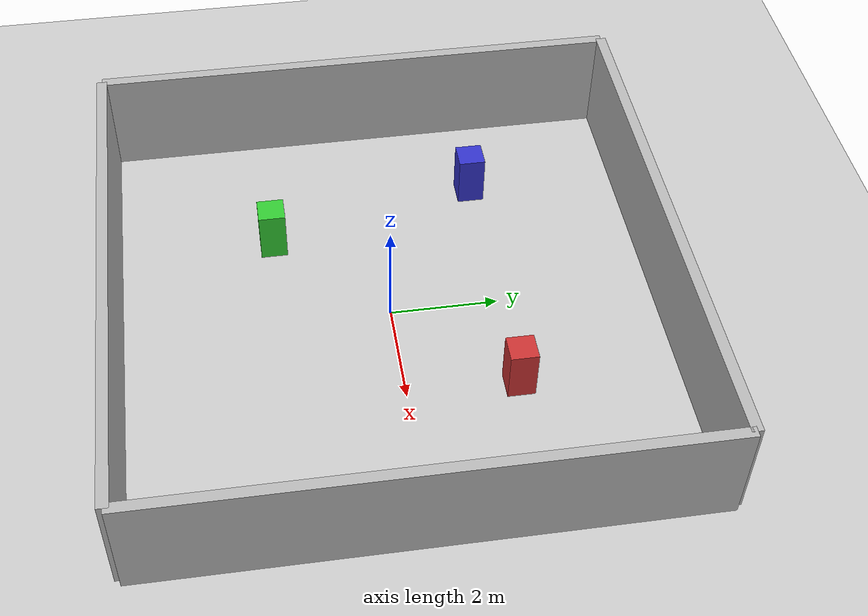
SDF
<?xml version="1.0" ?>
<sdf version="1.6">
  <world name="test_room">

    <gravity>0 0 0</gravity>

    <include><uri>model://ground_plane</uri></include>
    <include><uri>model://sun</uri></include>

    <!-- 10m x 10m room -->
    <model name="wall_north">
      <static>true</static><pose>0 5 1 0 0 0</pose>
      <link name="link">
        <collision name="c"><geometry><box><size>10 0.2 2</size></box></geometry></collision>
        <visual name="v"><geometry><box><size>10 0.2 2</size></box></geometry></visual>
      </link>
    </model>
    <model name="wall_south">
      <static>true</static><pose>0 -5 1 0 0 0</pose>
      <link name="link">
        <collision name="c"><geometry><box><size>10 0.2 2</size></box></geometry></collision>
        <visual name="v"><geometry><box><size>10 0.2 2</size></box></geometry></visual>
      </link>
    </model>
    <model name="wall_east">
      <static>true</static><pose>5 0 1 0 0 0</pose>
      <link name="link">
        <collision name="c"><geometry><box><size>0.2 10 2</size></box></geometry></collision>
        <visual name="v"><geometry><box><size>0.2 10 2</size></box></geometry></visual>
      </link>
    </model>
    <model name="wall_west">
      <static>true</static><pose>-5 0 1 0 0 0</pose>
      <link name="link">
        <collision name="c"><geometry><box><size>0.2 10 2</size></box></geometry></collision>
        <visual name="v"><geometry><box><size>0.2 10 2</size></box></geometry></visual>
      </link>
    </model>

    <!-- Obstacles for SLAM feature extraction -->
    <model name="box1">
      <static>true</static><pose>2 2 0.5 0 0 0</pose>
      <link name="link">
        <collision name="c"><geometry><box><size>0.5 0.5 1</size></box></geometry></collision>
        <visual name="v">
          <geometry><box><size>0.5 0.5 1</size></box></geometry>
          <material><ambient>0.8 0.2 0.2 1</ambient></material>
        </visual>
      </link>
    </model>
    <model name="box2">
      <static>true</static><pose>-2 -2 0.5 0 0 0</pose>
      <link name="link">
        <collision name="c"><geometry><box><size>0.5 0.5 1</size></box></geometry></collision>
        <visual name="v">
          <geometry><box><size>0.5 0.5 1</size></box></geometry>
          <material><ambient>0.2 0.8 0.2 1</ambient></material>
        </visual>
      </link>
    </model>
    <model name="box3">
      <static>true</static><pose>-3 2 0.5 0 0 0</pose>
      <link name="link">
        <collision name="c"><geometry><box><size>0.5 0.5 1</size></box></geometry></collision>
        <visual name="v">
          <geometry><box><size>0.5 0.5 1</size></box></geometry>
          <material><ambient>0.2 0.2 0.8 1</ambient></material>
        </visual>
      </link>
    </model>

  </world>
</sdf>
